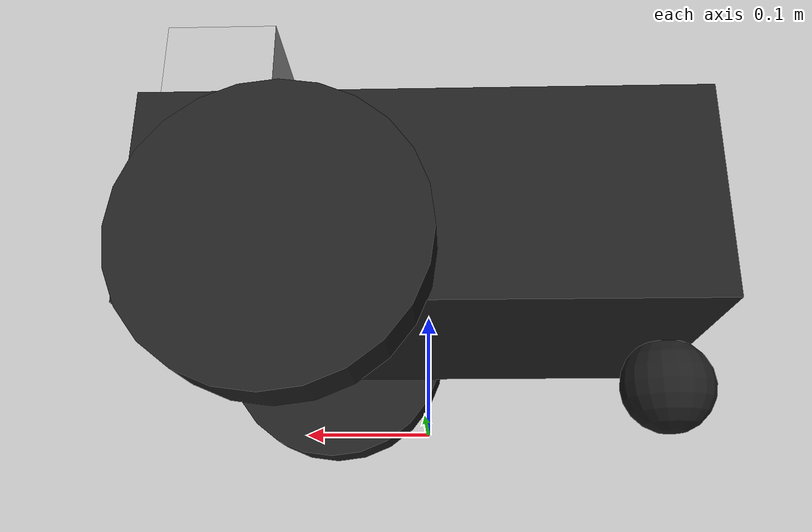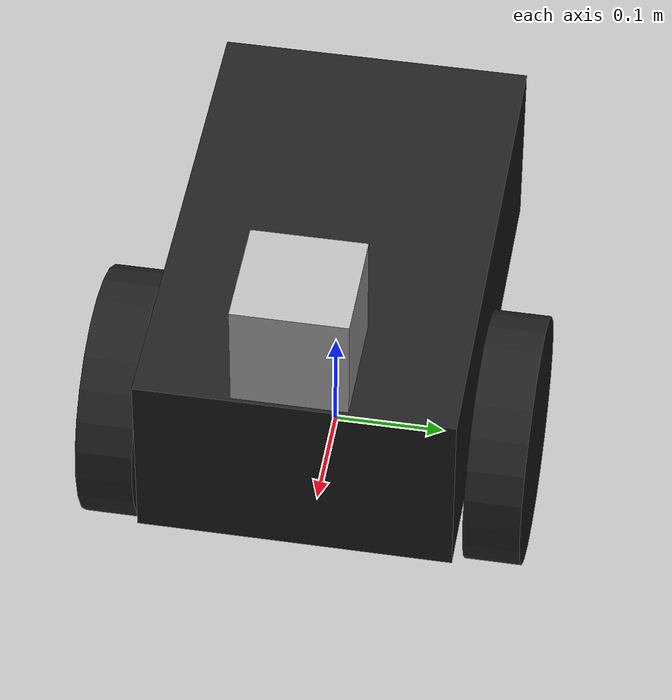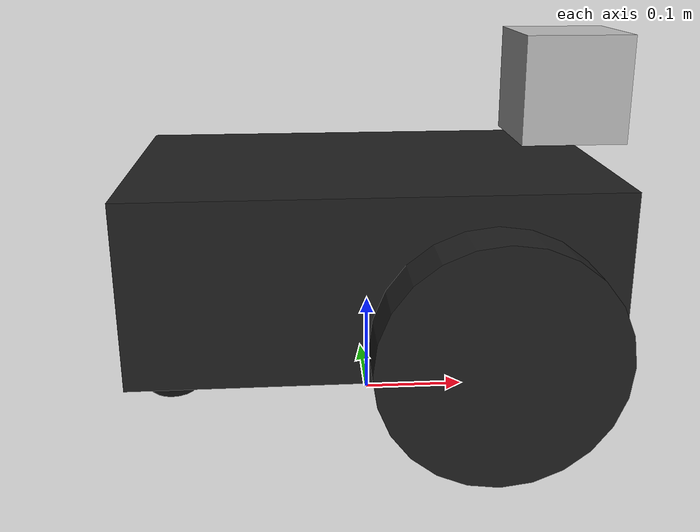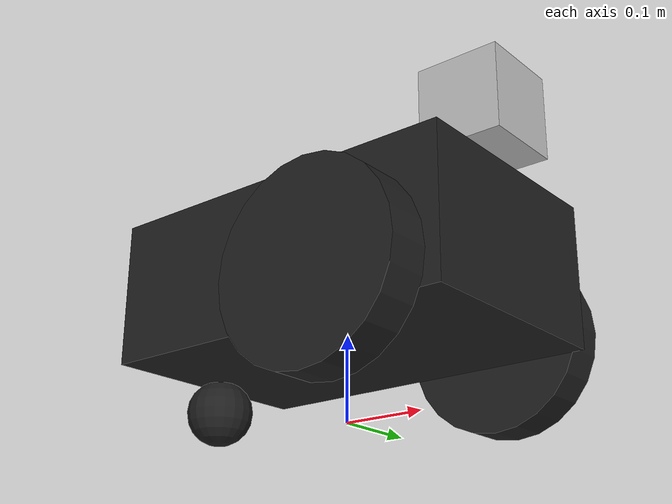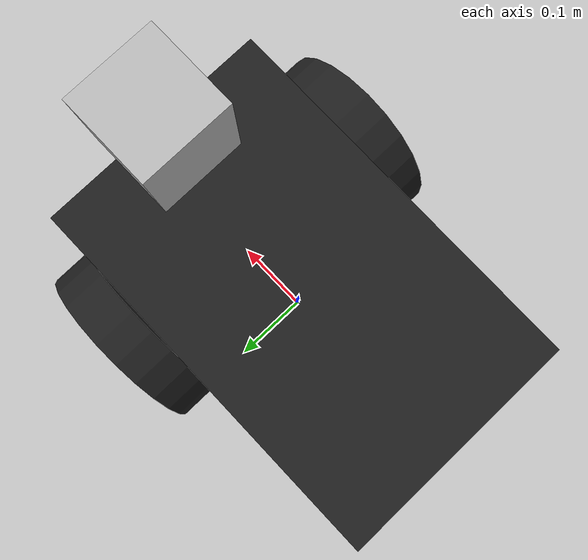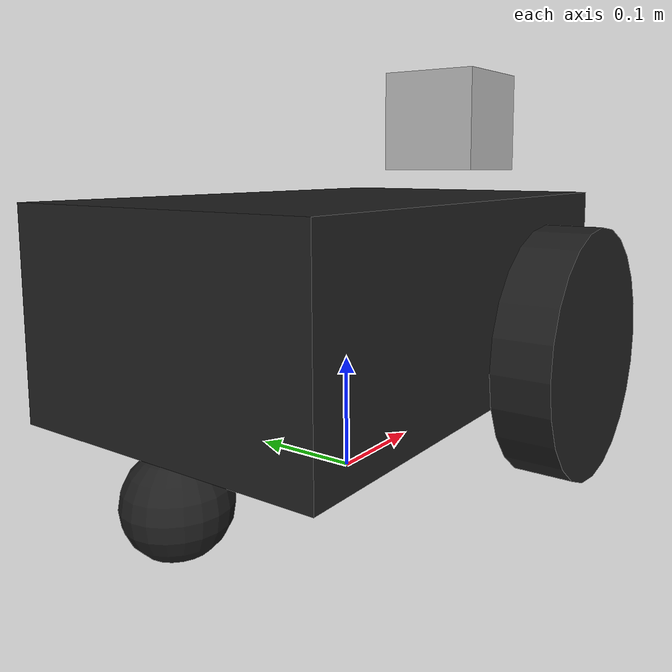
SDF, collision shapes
<?xml version='1.0'?>
<sdf version='1.7'>
  <model name='pioneer2DX'>
    <link name='camera_link'>
    <inertial>
      <mass>0.1</mass>
      <inertia>
        <ixx>0.000166667</ixx>
        <iyy>0.000166667</iyy>
        <izz>0.000166667</izz>
        <ixy>0</ixy>
        <ixz>0</ixz>
        <iyz>0</iyz>
      </inertia>
    </inertial>
    <collision name='collision'>
      <geometry>
        <box>
          <size>0.1 0.1 0.1</size>
        </box>
      </geometry>
    </collision>
    <visual name='visual'>
      <geometry>
        <box>
          <size>0.1 0.1 0.1</size>
        </box>
      </geometry>
    </visual>
    <pose>0.189972 0 0.317326 0 -0 0</pose>
    <sensor name='camera' type='camera'>
      <camera>
        <horizontal_fov>1.047</horizontal_fov>
        <image>
          <width>960</width>
          <height>720</height>
        </image>
        <clip>
          <near>0.1</near>
          <far>100</far>
        </clip>
      </camera>
      <always_on>1</always_on>
      <update_rate>30</update_rate>
      <visualize>1</visualize>
      <plugin name="camera_controller" filename="libgazebo_ros_camera.so">
        <alwaysOn>true</alwaysOn>
        <updateRate>0.0</updateRate>
        <cameraName>camera1</cameraName>
        <imageTopicName>image_raw</imageTopicName>
        <cameraInfoTopicName>camera_info</cameraInfoTopicName>
        <frameName>camera_link</frameName>
        <hackBaseline>0.07</hackBaseline>
        <distortionK1>0.0</distortionK1>
        <distortionK2>0.0</distortionK2>
        <distortionK3>0.0</distortionK3>
        <distortionT1>0.0</distortionT1>
        <distortionT2>0.0</distortionT2>
      </plugin>
    </sensor>

    </link>
    <link name='chassis'>
    <pose>0 0 0.16 0 -0 0</pose>
    <inertial>
      <mass>5.67</mass>
      <inertia>
        <ixx>0.07</ixx>
        <iyy>0.08</iyy>
        <izz>0.1</izz>
        <ixy>0</ixy>
        <ixz>0</ixz>
        <iyz>0</iyz>
      </inertia>
    </inertial>
    <collision name='collision'>
      <geometry>
        <box>
          <size>0.445 0.277 0.17</size>
        </box>
      </geometry>
    </collision>
    <collision name='castor_collision'>
      <pose>-0.2 0 -0.12 0 -0 0</pose>
      <geometry>
        <sphere>
          <radius>0.04</radius>
        </sphere>
      </geometry>
      <surface>
        <friction>
          <ode>
            <mu>0</mu>
            <mu2>0</mu2>
            <slip1>1</slip1>
            <slip2>1</slip2>
          </ode>
        </friction>
      </surface>
    </collision>
    <visual name='visual'>
      <pose>0 0 0.04 0 -0 0</pose>
      <geometry>
        <mesh>
          <uri>model://pioneer2dx/meshes/chassis.dae</uri>
        </mesh>
      </geometry>
    </visual>
    <visual name='castor_visual'>
      <pose>-0.2 0 -0.12 0 -0 0</pose>
      <geometry>
        <sphere>
          <radius>0.04</radius>
        </sphere>
      </geometry>
      <material>
        <script>
          <uri>file://media/materials/scripts/gazebo.material</uri>
          <name>Gazebo/FlatBlack</name>
        </script>
      </material>
    </visual>
    </link>
    <link name='right_wheel'>
    <pose>0.1 -0.17 0.11 -0 1.5707 1.5707</pose>
    <inertial>
      <mass>1.5</mass>
      <inertia>
        <ixx>0.0051</ixx>
        <iyy>0.0051</iyy>
        <izz>0.009</izz>
        <ixy>0</ixy>
        <ixz>0</ixz>
        <iyz>0</iyz>
      </inertia>
    </inertial>
    <collision name='collision'>
      <geometry>
        <cylinder>
          <radius>0.11</radius>
          <length>0.05</length>
        </cylinder>
      </geometry>
      <surface>
        <friction>
          <ode>
            <mu>100000</mu>
            <mu2>100000</mu2>
            <slip1>0</slip1>
            <slip2>0</slip2>
          </ode>
        </friction>
      </surface>
    </collision>
    <visual name='visual'>
      <geometry>
        <cylinder>
          <radius>0.11</radius>
          <length>0.05</length>
        </cylinder>
      </geometry>
      <material>
        <script>
          <uri>file://media/materials/scripts/gazebo.material</uri>
          <name>Gazebo/FlatBlack</name>
        </script>
      </material>
    </visual>
    </link>
    <link name='left_wheel'>
    <pose>0.1 0.17 0.11 -0 1.5707 1.5707</pose>
    <inertial>
      <mass>1.5</mass>
      <inertia>
        <ixx>0.0051</ixx>
        <iyy>0.0051</iyy>
        <izz>0.009</izz>
        <ixy>0</ixy>
        <ixz>0</ixz>
        <iyz>0</iyz>
      </inertia>
    </inertial>
    <collision name='collision'>
      <geometry>
        <cylinder>
          <radius>0.11</radius>
          <length>0.05</length>
        </cylinder>
      </geometry>
      <surface>
        <friction>
          <ode>
            <mu>100000</mu>
            <mu2>100000</mu2>
            <slip1>0</slip1>
            <slip2>0</slip2>
          </ode>
        </friction>
      </surface>
    </collision>
    <visual name='visual'>
      <geometry>
        <cylinder>
          <radius>0.11</radius>
          <length>0.05</length>
        </cylinder>
      </geometry>
      <material>
        <script>
          <uri>file://media/materials/scripts/gazebo.material</uri>
          <name>Gazebo/FlatBlack</name>
        </script>
      </material>
    </visual>
    </link>
    <joint name='left_wheel_hinge' type='revolute'>
    <pose>0 0 -0.03 0 -0 0</pose>
    <child>left_wheel</child>
    <parent>chassis</parent>
    <axis>
      <xyz expressed_in='__model__'>0 1 0</xyz>
      <limit>
        <lower>-1e+16</lower>
        <upper>1e+16</upper>
      </limit>
    </axis>
    </joint>
    <joint name='right_wheel_hinge' type='revolute'>
    <pose>0 0 0.03 0 -0 0</pose>
    <child>right_wheel</child>
    <parent>chassis</parent>
    <axis>
      <xyz expressed_in='__model__'>0 1 0</xyz>
      <limit>
        <lower>-1e+16</lower>
        <upper>1e+16</upper>
      </limit>
    </axis>
    </joint>

    <plugin name='differential_drive_controller'
              filename='libgazebo_ros_diff_drive.so'>
        <alwaysOn>true</alwaysOn>
        <updateRate>100</updateRate>
        <leftJoint>left_wheel_hinge</leftJoint>
        <rightJoint>right_wheel_hinge</rightJoint>
        <wheelSeparation>0.39</wheelSeparation>
        <wheelDiameter>0.15</wheelDiameter>
        <torque>5</torque>
        <commandTopic>cmd_vel</commandTopic>
        <odometryTopic>odom</odometryTopic>
        <odometryFrame>odom</odometryFrame>
        <robotBaseFrame>chassis</robotBaseFrame>
    </plugin>
    <joint name='chassis_JOINT_0' type='fixed'>
      <parent>chassis</parent>
      <child>camera_link</child>
      <pose>0 0 0 0 -0 0</pose>
      <physics>
        <ode>
          <limit>
            <cfm>0</cfm>
            <erp>0.2</erp>
          </limit>
          <suspension>
            <cfm>0</cfm>
            <erp>0.2</erp>
          </suspension>
        </ode>
      </physics>
    </joint>
    <static>0</static>
    <allow_auto_disable>1</allow_auto_disable>
  </model>
</sdf>
